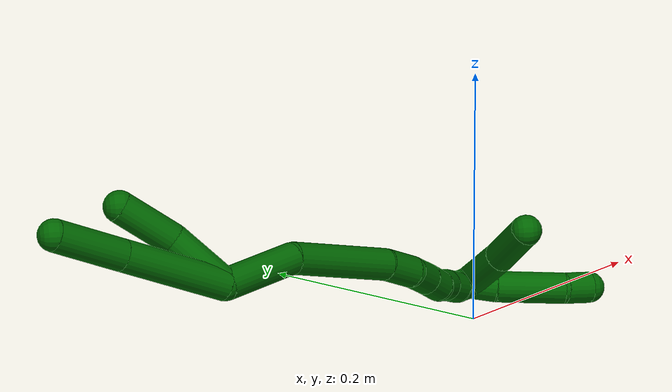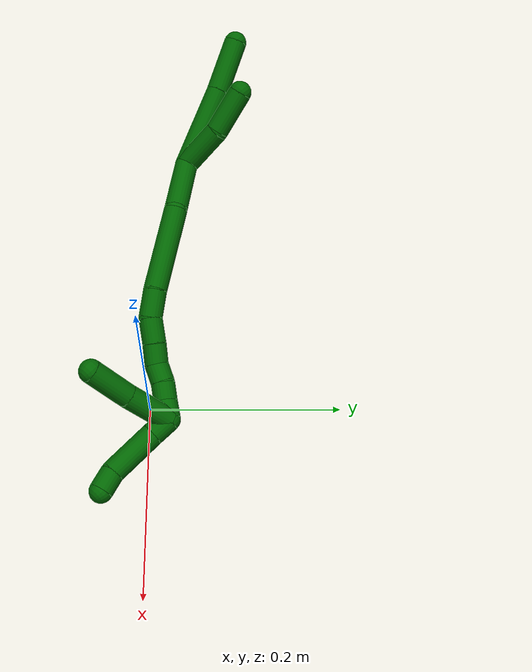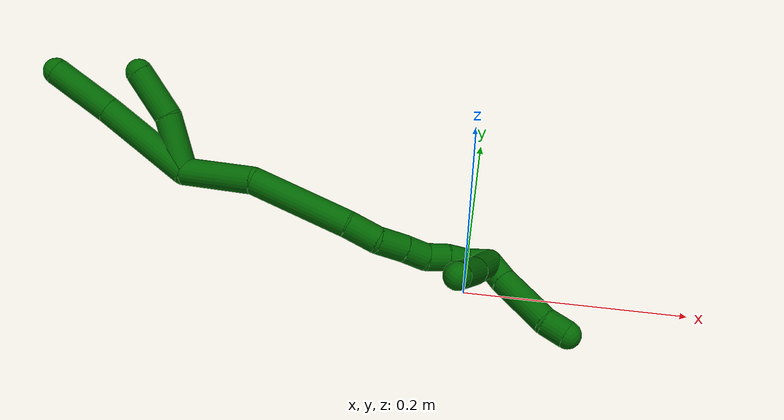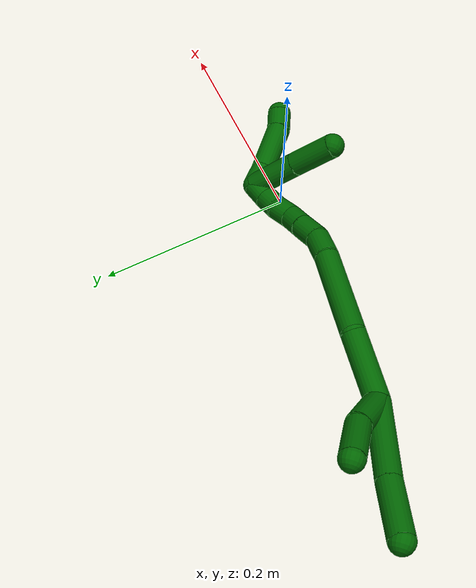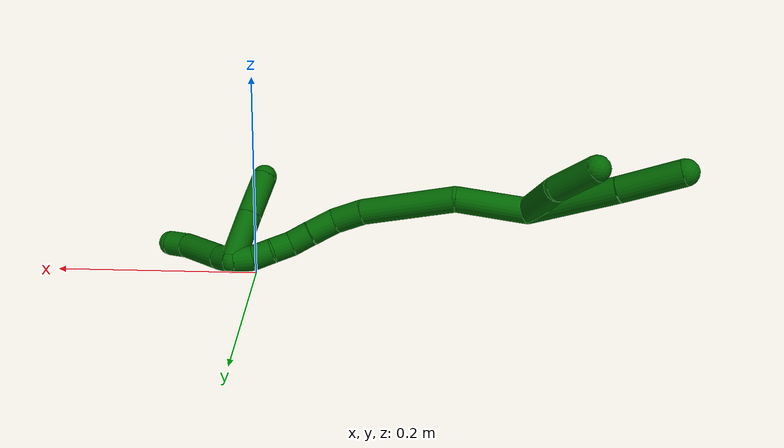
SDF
<sdf version="1.7">
 <world name="default">
  <model name="6">
   <static>0</static>
   <link name="6">
    <collision name="collision-cylinder-e_1_2_8">
     <pose>-0.022143 -0.003985 0.039017 0.101793 -0.513972 -0.026772</pose>
     <geometry><cylinder><radius>0.0125</radius><length>0.090078</length></cylinder></geometry>
     <surface>
      <friction><ode><mu>1.16</mu><mu2>1.16</mu2><slip1>0</slip1><slip2>0</slip2></ode></friction>
      <contact><ode><kp>1e+06</kp><kd>1</kd><max_vel>0</max_vel><min_depth>0.001</min_depth></ode></contact>
     </surface>
    </collision>
    <visual name="visual-cylinder-e_1_2_8">
     <pose>-0.022143 -0.003985 0.039017 0.101793 -0.513972 -0.026772</pose>
     <geometry><cylinder><radius>0.0125</radius><length>0.090078</length></cylinder></geometry>
     <material><ambient>0 0.392157 0.003922 1</ambient></material>
    </visual>
    <collision name="collision-cylinder-e_2_8_6">
     <pose>-0.060344 -0.009701 0.103269 0.06847 -0.565647 -0.019906</pose>
     <geometry><cylinder><radius>0.0125</radius><length>0.059922</length></cylinder></geometry>
     <surface>
      <friction><ode><mu>1.16</mu><mu2>1.16</mu2><slip1>0</slip1><slip2>0</slip2></ode></friction>
      <contact><ode><kp>1e+06</kp><kd>1</kd><max_vel>0</max_vel><min_depth>0.001</min_depth></ode></contact>
     </surface>
    </collision>
    <visual name="visual-cylinder-e_2_8_6">
     <pose>-0.060344 -0.009701 0.103269 0.06847 -0.565647 -0.019906</pose>
     <geometry><cylinder><radius>0.0125</radius><length>0.059922</length></cylinder></geometry>
     <material><ambient>0 0.392157 0.003922 1</ambient></material>
    </visual>
    <collision name="collision-cylinder-e_1_2_9">
     <pose>-0.00799 -0.016445 0.018205 0.734657 -0.314846 -0.12201</pose>
     <geometry><cylinder><radius>0.0125</radius><length>0.051602</length></cylinder></geometry>
     <surface>
      <friction><ode><mu>1.16</mu><mu2>1.16</mu2><slip1>0</slip1><slip2>0</slip2></ode></friction>
      <contact><ode><kp>1e+06</kp><kd>1</kd><max_vel>0</max_vel><min_depth>0.001</min_depth></ode></contact>
     </surface>
    </collision>
    <visual name="visual-cylinder-e_1_2_9">
     <pose>-0.00799 -0.016445 0.018205 0.734657 -0.314846 -0.12201</pose>
     <geometry><cylinder><radius>0.0125</radius><length>0.051602</length></cylinder></geometry>
     <material><ambient>0 0.392157 0.003922 1</ambient></material>
    </visual>
    <collision name="collision-cylinder-e_2_9_5">
     <pose>-0.026947 -0.042463 0.05574 0.459825 -0.470381 -0.112052</pose>
     <geometry><cylinder><radius>0.0125</radius><length>0.048398</length></cylinder></geometry>
     <surface>
      <friction><ode><mu>1.16</mu><mu2>1.16</mu2><slip1>0</slip1><slip2>0</slip2></ode></friction>
      <contact><ode><kp>1e+06</kp><kd>1</kd><max_vel>0</max_vel><min_depth>0.001</min_depth></ode></contact>
     </surface>
    </collision>
    <visual name="visual-cylinder-e_2_9_5">
     <pose>-0.026947 -0.042463 0.05574 0.459825 -0.470381 -0.112052</pose>
     <geometry><cylinder><radius>0.0125</radius><length>0.048398</length></cylinder></geometry>
     <material><ambient>0 0.392157 0.003922 1</ambient></material>
    </visual>
    <collision name="collision-cylinder-e_1_2_10">
     <pose>0.011794 -0.015164 -0.028047 2.64595 0.354298 1.23155</pose>
     <geometry><cylinder><radius>0.0125</radius><length>0.067991</length></cylinder></geometry>
     <surface>
      <friction><ode><mu>1.16</mu><mu2>1.16</mu2><slip1>0</slip1><slip2>0</slip2></ode></friction>
      <contact><ode><kp>1e+06</kp><kd>1</kd><max_vel>0</max_vel><min_depth>0.001</min_depth></ode></contact>
     </surface>
    </collision>
    <visual name="visual-cylinder-e_1_2_10">
     <pose>0.011794 -0.015164 -0.028047 2.64595 0.354298 1.23155</pose>
     <geometry><cylinder><radius>0.0125</radius><length>0.067991</length></cylinder></geometry>
     <material><ambient>0 0.392157 0.003922 1</ambient></material>
    </visual>
    <collision name="collision-cylinder-e_2_10_11">
     <pose>0.047999 -0.037324 -0.094828 2.96291 0.555139 2.53236</pose>
     <geometry><cylinder><radius>0.0125</radius><length>0.092631</length></cylinder></geometry>
     <surface>
      <friction><ode><mu>1.16</mu><mu2>1.16</mu2><slip1>0</slip1><slip2>0</slip2></ode></friction>
      <contact><ode><kp>1e+06</kp><kd>1</kd><max_vel>0</max_vel><min_depth>0.001</min_depth></ode></contact>
     </surface>
    </collision>
    <visual name="visual-cylinder-e_2_10_11">
     <pose>0.047999 -0.037324 -0.094828 2.96291 0.555139 2.53236</pose>
     <geometry><cylinder><radius>0.0125</radius><length>0.092631</length></cylinder></geometry>
     <material><ambient>0 0.392157 0.003922 1</ambient></material>
    </visual>
    <collision name="collision-cylinder-e_3_11_12">
     <pose>0.082057 -0.045237 -0.144923 3.06101 0.702326 2.9224</pose>
     <geometry><cylinder><radius>0.0125</radius><length>0.029866</length></cylinder></geometry>
     <surface>
      <friction><ode><mu>1.16</mu><mu2>1.16</mu2><slip1>0</slip1><slip2>0</slip2></ode></friction>
      <contact><ode><kp>1e+06</kp><kd>1</kd><max_vel>0</max_vel><min_depth>0.001</min_depth></ode></contact>
     </surface>
    </collision>
    <visual name="visual-cylinder-e_3_11_12">
     <pose>0.082057 -0.045237 -0.144923 3.06101 0.702326 2.9224</pose>
     <geometry><cylinder><radius>0.0125</radius><length>0.029866</length></cylinder></geometry>
     <material><ambient>0 0.392157 0.003922 1</ambient></material>
    </visual>
    <collision name="collision-cylinder-e_4_12_13">
     <pose>0.102994 -0.048529 -0.163469 2.82238 0.980365 2.55562</pose>
     <geometry><cylinder><radius>0.0125</radius><length>0.027182</length></cylinder></geometry>
     <surface>
      <friction><ode><mu>1.16</mu><mu2>1.16</mu2><slip1>0</slip1><slip2>0</slip2></ode></friction>
      <contact><ode><kp>1e+06</kp><kd>1</kd><max_vel>0</max_vel><min_depth>0.001</min_depth></ode></contact>
     </surface>
    </collision>
    <visual name="visual-cylinder-e_4_12_13">
     <pose>0.102994 -0.048529 -0.163469 2.82238 0.980365 2.55562</pose>
     <geometry><cylinder><radius>0.0125</radius><length>0.027182</length></cylinder></geometry>
     <material><ambient>0 0.392157 0.003922 1</ambient></material>
    </visual>
    <collision name="collision-cylinder-e_5_13_14">
     <pose>0.123419 -0.052121 -0.176732 2.94394 0.974569 2.77166</pose>
     <geometry><cylinder><radius>0.0125</radius><length>0.02208</length></cylinder></geometry>
     <surface>
      <friction><ode><mu>1.16</mu><mu2>1.16</mu2><slip1>0</slip1><slip2>0</slip2></ode></friction>
      <contact><ode><kp>1e+06</kp><kd>1</kd><max_vel>0</max_vel><min_depth>0.001</min_depth></ode></contact>
     </surface>
    </collision>
    <visual name="visual-cylinder-e_5_13_14">
     <pose>0.123419 -0.052121 -0.176732 2.94394 0.974569 2.77166</pose>
     <geometry><cylinder><radius>0.0125</radius><length>0.02208</length></cylinder></geometry>
     <material><ambient>0 0.392157 0.003922 1</ambient></material>
    </visual>
    <collision name="collision-cylinder-e_6_14_15">
     <pose>0.140641 -0.057542 -0.187133 2.37005 0.930095 1.78069</pose>
     <geometry><cylinder><radius>0.0125</radius><length>0.020174</length></cylinder></geometry>
     <surface>
      <friction><ode><mu>1.16</mu><mu2>1.16</mu2><slip1>0</slip1><slip2>0</slip2></ode></friction>
      <contact><ode><kp>1e+06</kp><kd>1</kd><max_vel>0</max_vel><min_depth>0.001</min_depth></ode></contact>
     </surface>
    </collision>
    <visual name="visual-cylinder-e_6_14_15">
     <pose>0.140641 -0.057542 -0.187133 2.37005 0.930095 1.78069</pose>
     <geometry><cylinder><radius>0.0125</radius><length>0.020174</length></cylinder></geometry>
     <material><ambient>0 0.392157 0.003922 1</ambient></material>
    </visual>
    <collision name="collision-cylinder-e_7_15_16">
     <pose>0.156562 -0.064402 -0.197135 2.70417 0.895825 2.27505</pose>
     <geometry><cylinder><radius>0.0125</radius><length>0.02007</length></cylinder></geometry>
     <surface>
      <friction><ode><mu>1.16</mu><mu2>1.16</mu2><slip1>0</slip1><slip2>0</slip2></ode></friction>
      <contact><ode><kp>1e+06</kp><kd>1</kd><max_vel>0</max_vel><min_depth>0.001</min_depth></ode></contact>
     </surface>
    </collision>
    <visual name="visual-cylinder-e_7_15_16">
     <pose>0.156562 -0.064402 -0.197135 2.70417 0.895825 2.27505</pose>
     <geometry><cylinder><radius>0.0125</radius><length>0.02007</length></cylinder></geometry>
     <material><ambient>0 0.392157 0.003922 1</ambient></material>
    </visual>
    <collision name="collision-cylinder-e_8_16_1">
     <pose>0.170758 -0.071957 -0.208782 2.45417 0.689216 1.57361</pose>
     <geometry><cylinder><radius>0.0125</radius><length>0.020006</length></cylinder></geometry>
     <surface>
      <friction><ode><mu>1.16</mu><mu2>1.16</mu2><slip1>0</slip1><slip2>0</slip2></ode></friction>
      <contact><ode><kp>1e+06</kp><kd>1</kd><max_vel>0</max_vel><min_depth>0.001</min_depth></ode></contact>
     </surface>
    </collision>
    <visual name="visual-cylinder-e_8_16_1">
     <pose>0.170758 -0.071957 -0.208782 2.45417 0.689216 1.57361</pose>
     <geometry><cylinder><radius>0.0125</radius><length>0.020006</length></cylinder></geometry>
     <material><ambient>0 0.392157 0.003922 1</ambient></material>
    </visual>
    <collision name="collision-cylinder-e_1_1_17">
     <pose>0.15284 -0.07476 -0.224498 -2.92982 -1.18108 2.82711</pose>
     <geometry><cylinder><radius>0.0125</radius><length>0.052494</length></cylinder></geometry>
     <surface>
      <friction><ode><mu>1.16</mu><mu2>1.16</mu2><slip1>0</slip1><slip2>0</slip2></ode></friction>
      <contact><ode><kp>1e+06</kp><kd>1</kd><max_vel>0</max_vel><min_depth>0.001</min_depth></ode></contact>
     </surface>
    </collision>
    <visual name="visual-cylinder-e_1_1_17">
     <pose>0.15284 -0.07476 -0.224498 -2.92982 -1.18108 2.82711</pose>
     <geometry><cylinder><radius>0.0125</radius><length>0.052494</length></cylinder></geometry>
     <material><ambient>0 0.392157 0.003922 1</ambient></material>
    </visual>
    <collision name="collision-cylinder-e_2_17_4">
     <pose>0.106076 -0.071427 -0.241803 -2.97933 -1.24258 2.9154</pose>
     <geometry><cylinder><radius>0.0125</radius><length>0.047506</length></cylinder></geometry>
     <surface>
      <friction><ode><mu>1.16</mu><mu2>1.16</mu2><slip1>0</slip1><slip2>0</slip2></ode></friction>
      <contact><ode><kp>1e+06</kp><kd>1</kd><max_vel>0</max_vel><min_depth>0.001</min_depth></ode></contact>
     </surface>
    </collision>
    <visual name="visual-cylinder-e_2_17_4">
     <pose>0.106076 -0.071427 -0.241803 -2.97933 -1.24258 2.9154</pose>
     <geometry><cylinder><radius>0.0125</radius><length>0.047506</length></cylinder></geometry>
     <material><ambient>0 0.392157 0.003922 1</ambient></material>
    </visual>
    <collision name="collision-cylinder-e_1_1_18">
     <pose>0.177937 -0.074531 -0.225774 -2.93375 0.072512 -0.669386</pose>
     <geometry><cylinder><radius>0.0125</radius><length>0.022595</length></cylinder></geometry>
     <surface>
      <friction><ode><mu>1.16</mu><mu2>1.16</mu2><slip1>0</slip1><slip2>0</slip2></ode></friction>
      <contact><ode><kp>1e+06</kp><kd>1</kd><max_vel>0</max_vel><min_depth>0.001</min_depth></ode></contact>
     </surface>
    </collision>
    <visual name="visual-cylinder-e_1_1_18">
     <pose>0.177937 -0.074531 -0.225774 -2.93375 0.072512 -0.669386</pose>
     <geometry><cylinder><radius>0.0125</radius><length>0.022595</length></cylinder></geometry>
     <material><ambient>0 0.392157 0.003922 1</ambient></material>
    </visual>
    <collision name="collision-cylinder-e_2_18_19">
     <pose>0.180035 -0.069734 -0.264374 -3.05221 0.046187 -0.95346</pose>
     <geometry><cylinder><radius>0.0125</radius><length>0.05543</length></cylinder></geometry>
     <surface>
      <friction><ode><mu>1.16</mu><mu2>1.16</mu2><slip1>0</slip1><slip2>0</slip2></ode></friction>
      <contact><ode><kp>1e+06</kp><kd>1</kd><max_vel>0</max_vel><min_depth>0.001</min_depth></ode></contact>
     </surface>
    </collision>
    <visual name="visual-cylinder-e_2_18_19">
     <pose>0.180035 -0.069734 -0.264374 -3.05221 0.046187 -0.95346</pose>
     <geometry><cylinder><radius>0.0125</radius><length>0.05543</length></cylinder></geometry>
     <material><ambient>0 0.392157 0.003922 1</ambient></material>
    </visual>
    <collision name="collision-cylinder-e_3_19_3">
     <pose>0.184037 -0.068195 -0.302553 3.05396 0.250348 2.47104</pose>
     <geometry><cylinder><radius>0.0125</radius><length>0.021975</length></cylinder></geometry>
     <surface>
      <friction><ode><mu>1.16</mu><mu2>1.16</mu2><slip1>0</slip1><slip2>0</slip2></ode></friction>
      <contact><ode><kp>1e+06</kp><kd>1</kd><max_vel>0</max_vel><min_depth>0.001</min_depth></ode></contact>
     </surface>
    </collision>
    <visual name="visual-cylinder-e_3_19_3">
     <pose>0.184037 -0.068195 -0.302553 3.05396 0.250348 2.47104</pose>
     <geometry><cylinder><radius>0.0125</radius><length>0.021975</length></cylinder></geometry>
     <material><ambient>0 0.392157 0.003922 1</ambient></material>
    </visual>
    <collision name="collision-sphere-3">
     <pose>0.186759 -0.069126 -0.313157 0 -0 0</pose>
     <geometry><sphere><radius>0.0125</radius></sphere></geometry>
     <surface>
      <friction><ode><mu>1.16</mu><mu2>1.16</mu2><slip1>0</slip1><slip2>0</slip2></ode></friction>
      <contact><ode><kp>1e+06</kp><kd>1</kd><max_vel>0</max_vel><min_depth>0.001</min_depth></ode></contact>
     </surface>
    </collision>
    <visual name="visual-sphere-3">
     <pose>0.186759 -0.069126 -0.313157 0 -0 0</pose>
     <geometry><sphere><radius>0.0125</radius></sphere></geometry>
     <material><ambient>0 0.392157 0.003922 1</ambient></material>
    </visual>
    <collision name="collision-sphere-19">
     <pose>0.181315 -0.067263 -0.291949 0 -0 0</pose>
     <geometry><sphere><radius>0.0125</radius></sphere></geometry>
     <surface>
      <friction><ode><mu>1.16</mu><mu2>1.16</mu2><slip1>0</slip1><slip2>0</slip2></ode></friction>
      <contact><ode><kp>1e+06</kp><kd>1</kd><max_vel>0</max_vel><min_depth>0.001</min_depth></ode></contact>
     </surface>
    </collision>
    <visual name="visual-sphere-19">
     <pose>0.181315 -0.067263 -0.291949 0 -0 0</pose>
     <geometry><sphere><radius>0.0125</radius></sphere></geometry>
     <material><ambient>0 0.392157 0.003922 1</ambient></material>
    </visual>
    <collision name="collision-sphere-10">
     <pose>0.023588 -0.030328 -0.056095 0 -0 0</pose>
     <geometry><sphere><radius>0.0125</radius></sphere></geometry>
     <surface>
      <friction><ode><mu>1.16</mu><mu2>1.16</mu2><slip1>0</slip1><slip2>0</slip2></ode></friction>
      <contact><ode><kp>1e+06</kp><kd>1</kd><max_vel>0</max_vel><min_depth>0.001</min_depth></ode></contact>
     </surface>
    </collision>
    <visual name="visual-sphere-10">
     <pose>0.023588 -0.030328 -0.056095 0 -0 0</pose>
     <geometry><sphere><radius>0.0125</radius></sphere></geometry>
     <material><ambient>0 0.392157 0.003922 1</ambient></material>
    </visual>
    <collision name="collision-sphere-5">
     <pose>-0.037915 -0.052036 0.07507 0 -0 0</pose>
     <geometry><sphere><radius>0.0125</radius></sphere></geometry>
     <surface>
      <friction><ode><mu>1.16</mu><mu2>1.16</mu2><slip1>0</slip1><slip2>0</slip2></ode></friction>
      <contact><ode><kp>1e+06</kp><kd>1</kd><max_vel>0</max_vel><min_depth>0.001</min_depth></ode></contact>
     </surface>
    </collision>
    <visual name="visual-sphere-5">
     <pose>-0.037915 -0.052036 0.07507 0 -0 0</pose>
     <geometry><sphere><radius>0.0125</radius></sphere></geometry>
     <material><ambient>0 0.392157 0.003922 1</ambient></material>
    </visual>
    <collision name="collision-sphere-6">
     <pose>-0.076402 -0.011432 0.128504 0 -0 0</pose>
     <geometry><sphere><radius>0.0125</radius></sphere></geometry>
     <surface>
      <friction><ode><mu>1.16</mu><mu2>1.16</mu2><slip1>0</slip1><slip2>0</slip2></ode></friction>
      <contact><ode><kp>1e+06</kp><kd>1</kd><max_vel>0</max_vel><min_depth>0.001</min_depth></ode></contact>
     </surface>
    </collision>
    <visual name="visual-sphere-6">
     <pose>-0.076402 -0.011432 0.128504 0 -0 0</pose>
     <geometry><sphere><radius>0.0125</radius></sphere></geometry>
     <material><ambient>0 0.392157 0.003922 1</ambient></material>
    </visual>
    <collision name="collision-sphere-9">
     <pose>-0.01598 -0.03289 0.03641 0 -0 0</pose>
     <geometry><sphere><radius>0.0125</radius></sphere></geometry>
     <surface>
      <friction><ode><mu>1.16</mu><mu2>1.16</mu2><slip1>0</slip1><slip2>0</slip2></ode></friction>
      <contact><ode><kp>1e+06</kp><kd>1</kd><max_vel>0</max_vel><min_depth>0.001</min_depth></ode></contact>
     </surface>
    </collision>
    <visual name="visual-sphere-9">
     <pose>-0.01598 -0.03289 0.03641 0 -0 0</pose>
     <geometry><sphere><radius>0.0125</radius></sphere></geometry>
     <material><ambient>0 0.392157 0.003922 1</ambient></material>
    </visual>
    <collision name="collision-sphere-2">
     <geometry><sphere><radius>0.0125</radius></sphere></geometry>
     <surface>
      <friction><ode><mu>1.16</mu><mu2>1.16</mu2><slip1>0</slip1><slip2>0</slip2></ode></friction>
      <contact><ode><kp>1e+06</kp><kd>1</kd><max_vel>0</max_vel><min_depth>0.001</min_depth></ode></contact>
     </surface>
    </collision>
    <visual name="visual-sphere-2">
     <geometry><sphere><radius>0.0125</radius></sphere></geometry>
     <material><ambient>0 0.392157 0.003922 1</ambient></material>
    </visual>
    <collision name="collision-sphere-8">
     <pose>-0.044286 -0.007971 0.078033 0 -0 0</pose>
     <geometry><sphere><radius>0.0125</radius></sphere></geometry>
     <surface>
      <friction><ode><mu>1.16</mu><mu2>1.16</mu2><slip1>0</slip1><slip2>0</slip2></ode></friction>
      <contact><ode><kp>1e+06</kp><kd>1</kd><max_vel>0</max_vel><min_depth>0.001</min_depth></ode></contact>
     </surface>
    </collision>
    <visual name="visual-sphere-8">
     <pose>-0.044286 -0.007971 0.078033 0 -0 0</pose>
     <geometry><sphere><radius>0.0125</radius></sphere></geometry>
     <material><ambient>0 0.392157 0.003922 1</ambient></material>
    </visual>
    <collision name="collision-sphere-11">
     <pose>0.07241 -0.044319 -0.133561 0 -0 0</pose>
     <geometry><sphere><radius>0.0125</radius></sphere></geometry>
     <surface>
      <friction><ode><mu>1.16</mu><mu2>1.16</mu2><slip1>0</slip1><slip2>0</slip2></ode></friction>
      <contact><ode><kp>1e+06</kp><kd>1</kd><max_vel>0</max_vel><min_depth>0.001</min_depth></ode></contact>
     </surface>
    </collision>
    <visual name="visual-sphere-11">
     <pose>0.07241 -0.044319 -0.133561 0 -0 0</pose>
     <geometry><sphere><radius>0.0125</radius></sphere></geometry>
     <material><ambient>0 0.392157 0.003922 1</ambient></material>
    </visual>
    <collision name="collision-sphere-12">
     <pose>0.091704 -0.046154 -0.156285 0 -0 0</pose>
     <geometry><sphere><radius>0.0125</radius></sphere></geometry>
     <surface>
      <friction><ode><mu>1.16</mu><mu2>1.16</mu2><slip1>0</slip1><slip2>0</slip2></ode></friction>
      <contact><ode><kp>1e+06</kp><kd>1</kd><max_vel>0</max_vel><min_depth>0.001</min_depth></ode></contact>
     </surface>
    </collision>
    <visual name="visual-sphere-12">
     <pose>0.091704 -0.046154 -0.156285 0 -0 0</pose>
     <geometry><sphere><radius>0.0125</radius></sphere></geometry>
     <material><ambient>0 0.392157 0.003922 1</ambient></material>
    </visual>
    <collision name="collision-sphere-13">
     <pose>0.114284 -0.050903 -0.170653 0 -0 0</pose>
     <geometry><sphere><radius>0.0125</radius></sphere></geometry>
     <surface>
      <friction><ode><mu>1.16</mu><mu2>1.16</mu2><slip1>0</slip1><slip2>0</slip2></ode></friction>
      <contact><ode><kp>1e+06</kp><kd>1</kd><max_vel>0</max_vel><min_depth>0.001</min_depth></ode></contact>
     </surface>
    </collision>
    <visual name="visual-sphere-13">
     <pose>0.114284 -0.050903 -0.170653 0 -0 0</pose>
     <geometry><sphere><radius>0.0125</radius></sphere></geometry>
     <material><ambient>0 0.392157 0.003922 1</ambient></material>
    </visual>
    <collision name="collision-sphere-14">
     <pose>0.132554 -0.053338 -0.182811 0 -0 0</pose>
     <geometry><sphere><radius>0.0125</radius></sphere></geometry>
     <surface>
      <friction><ode><mu>1.16</mu><mu2>1.16</mu2><slip1>0</slip1><slip2>0</slip2></ode></friction>
      <contact><ode><kp>1e+06</kp><kd>1</kd><max_vel>0</max_vel><min_depth>0.001</min_depth></ode></contact>
     </surface>
    </collision>
    <visual name="visual-sphere-14">
     <pose>0.132554 -0.053338 -0.182811 0 -0 0</pose>
     <geometry><sphere><radius>0.0125</radius></sphere></geometry>
     <material><ambient>0 0.392157 0.003922 1</ambient></material>
    </visual>
    <collision name="collision-sphere-15">
     <pose>0.148727 -0.061746 -0.191455 0 -0 0</pose>
     <geometry><sphere><radius>0.0125</radius></sphere></geometry>
     <surface>
      <friction><ode><mu>1.16</mu><mu2>1.16</mu2><slip1>0</slip1><slip2>0</slip2></ode></friction>
      <contact><ode><kp>1e+06</kp><kd>1</kd><max_vel>0</max_vel><min_depth>0.001</min_depth></ode></contact>
     </surface>
    </collision>
    <visual name="visual-sphere-15">
     <pose>0.148727 -0.061746 -0.191455 0 -0 0</pose>
     <geometry><sphere><radius>0.0125</radius></sphere></geometry>
     <material><ambient>0 0.392157 0.003922 1</ambient></material>
    </visual>
    <collision name="collision-sphere-16">
     <pose>0.164396 -0.067059 -0.202816 0 -0 0</pose>
     <geometry><sphere><radius>0.0125</radius></sphere></geometry>
     <surface>
      <friction><ode><mu>1.16</mu><mu2>1.16</mu2><slip1>0</slip1><slip2>0</slip2></ode></friction>
      <contact><ode><kp>1e+06</kp><kd>1</kd><max_vel>0</max_vel><min_depth>0.001</min_depth></ode></contact>
     </surface>
    </collision>
    <visual name="visual-sphere-16">
     <pose>0.164396 -0.067059 -0.202816 0 -0 0</pose>
     <geometry><sphere><radius>0.0125</radius></sphere></geometry>
     <material><ambient>0 0.392157 0.003922 1</ambient></material>
    </visual>
    <collision name="collision-sphere-1">
     <pose>0.177119 -0.076856 -0.214749 0 -0 0</pose>
     <geometry><sphere><radius>0.0125</radius></sphere></geometry>
     <surface>
      <friction><ode><mu>1.16</mu><mu2>1.16</mu2><slip1>0</slip1><slip2>0</slip2></ode></friction>
      <contact><ode><kp>1e+06</kp><kd>1</kd><max_vel>0</max_vel><min_depth>0.001</min_depth></ode></contact>
     </surface>
    </collision>
    <visual name="visual-sphere-1">
     <pose>0.177119 -0.076856 -0.214749 0 -0 0</pose>
     <geometry><sphere><radius>0.0125</radius></sphere></geometry>
     <material><ambient>0 0.392157 0.003922 1</ambient></material>
    </visual>
    <collision name="collision-sphere-18">
     <pose>0.178756 -0.072206 -0.2368 0 -0 0</pose>
     <geometry><sphere><radius>0.0125</radius></sphere></geometry>
     <surface>
      <friction><ode><mu>1.16</mu><mu2>1.16</mu2><slip1>0</slip1><slip2>0</slip2></ode></friction>
      <contact><ode><kp>1e+06</kp><kd>1</kd><max_vel>0</max_vel><min_depth>0.001</min_depth></ode></contact>
     </surface>
    </collision>
    <visual name="visual-sphere-18">
     <pose>0.178756 -0.072206 -0.2368 0 -0 0</pose>
     <geometry><sphere><radius>0.0125</radius></sphere></geometry>
     <material><ambient>0 0.392157 0.003922 1</ambient></material>
    </visual>
    <collision name="collision-sphere-17">
     <pose>0.128561 -0.072664 -0.234247 0 -0 0</pose>
     <geometry><sphere><radius>0.0125</radius></sphere></geometry>
     <surface>
      <friction><ode><mu>1.16</mu><mu2>1.16</mu2><slip1>0</slip1><slip2>0</slip2></ode></friction>
      <contact><ode><kp>1e+06</kp><kd>1</kd><max_vel>0</max_vel><min_depth>0.001</min_depth></ode></contact>
     </surface>
    </collision>
    <visual name="visual-sphere-17">
     <pose>0.128561 -0.072664 -0.234247 0 -0 0</pose>
     <geometry><sphere><radius>0.0125</radius></sphere></geometry>
     <material><ambient>0 0.392157 0.003922 1</ambient></material>
    </visual>
    <collision name="collision-sphere-4">
     <pose>0.083591 -0.07019 -0.249359 0 -0 0</pose>
     <geometry><sphere><radius>0.0125</radius></sphere></geometry>
     <surface>
      <friction><ode><mu>1.16</mu><mu2>1.16</mu2><slip1>0</slip1><slip2>0</slip2></ode></friction>
      <contact><ode><kp>1e+06</kp><kd>1</kd><max_vel>0</max_vel><min_depth>0.001</min_depth></ode></contact>
     </surface>
    </collision>
    <visual name="visual-sphere-4">
     <pose>0.083591 -0.07019 -0.249359 0 -0 0</pose>
     <geometry><sphere><radius>0.0125</radius></sphere></geometry>
     <material><ambient>0 0.392157 0.003922 1</ambient></material>
    </visual>
    <inertial>
     <pose>0.061865 -0.040549 -0.09548 0 -0 0</pose>
     <mass>0.75</mass>
     <inertia><ixx>9.9e-05</ixx><ixy>0</ixy><ixz>0</ixz><iyy>0.000225</iyy><iyz>0</iyz><izz>4.9e-05</izz></inertia>
    </inertial>
   </link>
   <pose>-0.261309 0.036122 0.083708 -1.61934 0.779179 0.789722</pose>
  </model>
 </world>
</sdf>
